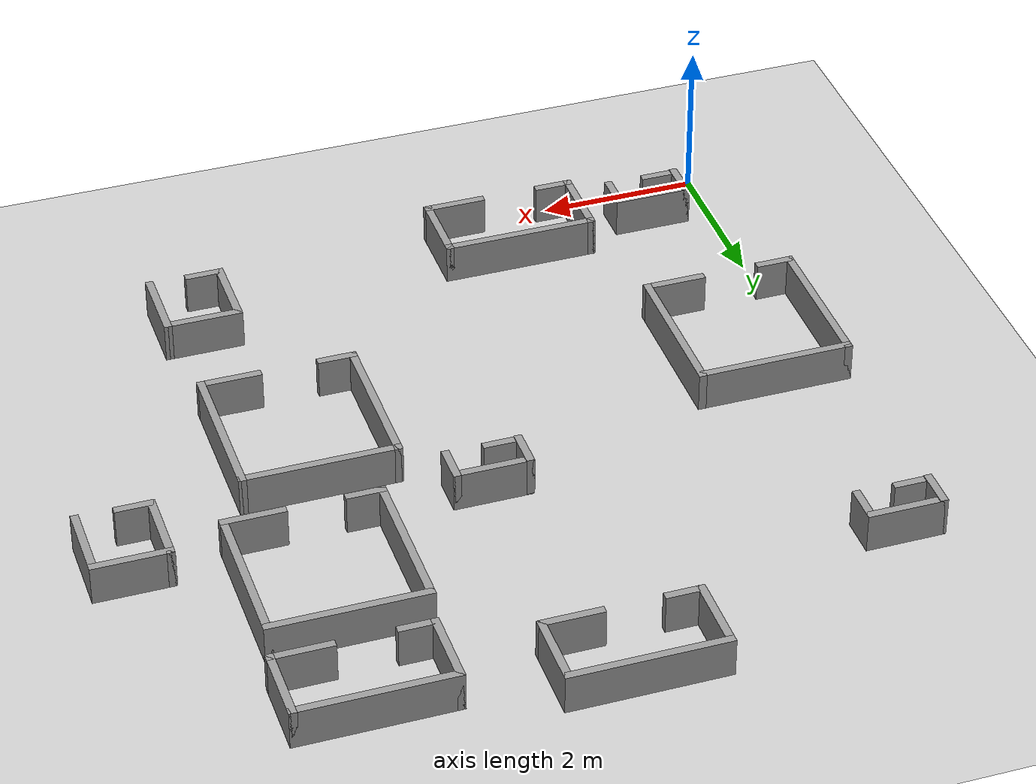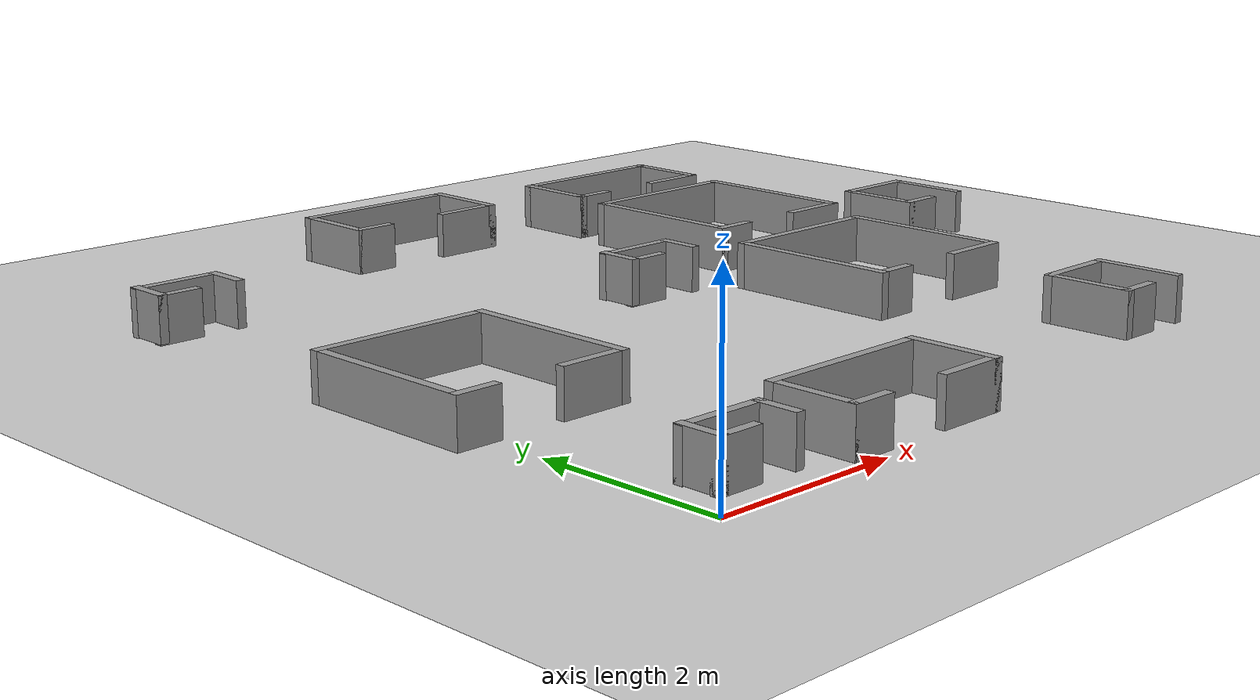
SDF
<sdf version="1.6">
 <world name="default">
  <model name="ground_plane">
   <static>1</static>
   <link name="link">
    <collision name="collision">
     <geometry><plane><normal>0 0 1</normal><size>20 20</size></plane></geometry>
     <surface>
      <contact><collide_bitmask>65535</collide_bitmask></contact>
      <friction><ode><mu>100</mu><mu2>50</mu2></ode></friction>
     </surface>
    </collision>
    <visual name="visual">
     <cast_shadows>0</cast_shadows>
     <geometry><plane><normal>0 0 1</normal><size>20 20</size></plane></geometry>
     <material>
      <script><uri>file://media/materials/scripts/gazebo.material</uri><name>Gazebo/Grey</name></script>
     </material>
    </visual>
   </link>
  </model>
  <model name="shape5">
   <pose>6.8 6.4 0 0 -0 0</pose>
   <link name="Wall_20">
    <collision name="Wall_20_Collision">
     <geometry><box><size>2 0.1 0.5</size></box></geometry>
     <pose>0 0 0.25 0 -0 0</pose>
    </collision>
    <visual name="Wall_20_Visual">
     <pose>0 0 0.25 0 -0 0</pose>
     <geometry><box><size>2 0.1 0.5</size></box></geometry>
     <material>
      <script><uri>file://media/materials/scripts/gazebo.material</uri><name>Gazebo/Grey</name></script>
      <ambient>1 1 1 1</ambient>
     </material>
     <meta><layer>0</layer></meta>
    </visual>
    <pose>-0 0.95 0 0 -0 0</pose>
   </link>
   <link name="Wall_21">
    <collision name="Wall_21_Collision">
     <geometry><box><size>2 0.1 0.5</size></box></geometry>
     <pose>0 0 0.25 0 -0 0</pose>
    </collision>
    <visual name="Wall_21_Visual">
     <pose>0 0 0.25 0 -0 0</pose>
     <geometry><box><size>2 0.1 0.5</size></box></geometry>
     <material>
      <script><uri>file://media/materials/scripts/gazebo.material</uri><name>Gazebo/Grey</name></script>
      <ambient>1 1 1 1</ambient>
     </material>
     <meta><layer>0</layer></meta>
    </visual>
    <pose>0.95 0 0 0 -0 -1.5708</pose>
   </link>
   <link name="Wall_22">
    <collision name="Wall_22_Collision">
     <geometry><box><size>0.8 0.1 0.5</size></box></geometry>
     <pose>0 0 0.25 0 -0 0</pose>
    </collision>
    <visual name="Wall_22_Visual">
     <pose>0 0 0.25 0 -0 0</pose>
     <geometry><box><size>0.8 0.1 0.5</size></box></geometry>
     <material>
      <script><uri>file://media/materials/scripts/gazebo.material</uri><name>Gazebo/Grey</name></script>
      <ambient>1 1 1 1</ambient>
     </material>
     <meta><layer>0</layer></meta>
    </visual>
    <pose>0.6 -0.95 0 0 -0 3.14159</pose>
   </link>
   <link name="Wall_24">
    <collision name="Wall_24_Collision">
     <geometry><box><size>2 0.1 0.5</size></box></geometry>
     <pose>0 0 0.25 0 -0 0</pose>
    </collision>
    <visual name="Wall_24_Visual">
     <pose>0 0 0.25 0 -0 0</pose>
     <geometry><box><size>2 0.1 0.5</size></box></geometry>
     <material>
      <script><uri>file://media/materials/scripts/gazebo.material</uri><name>Gazebo/Grey</name></script>
      <ambient>1 1 1 1</ambient>
     </material>
     <meta><layer>0</layer></meta>
    </visual>
    <pose>-0.95 0 0 0 -0 -1.5708</pose>
   </link>
   <link name="Wall_25">
    <collision name="Wall_25_Collision">
     <geometry><box><size>0.5 0.1 0.5</size></box></geometry>
     <pose>0 0 0.25 0 -0 0</pose>
    </collision>
    <visual name="Wall_25_Visual">
     <pose>0 0 0.25 0 -0 0</pose>
     <geometry><box><size>0.5 0.1 0.5</size></box></geometry>
     <material>
      <script><uri>file://media/materials/scripts/gazebo.material</uri><name>Gazebo/Grey</name></script>
      <ambient>1 1 1 1</ambient>
     </material>
     <meta><layer>0</layer></meta>
    </visual>
    <pose>-0.75 -0.95 0 0 -0 0</pose>
   </link>
   <static>1</static>
  </model>
  <model name="shape5">
   <pose>6.4 3.8 0 0 -0 0</pose>
   <link name="Wall_20">
    <collision name="Wall_20_Collision">
     <geometry><box><size>2 0.1 0.5</size></box></geometry>
     <pose>0 0 0.25 0 -0 0</pose>
    </collision>
    <visual name="Wall_20_Visual">
     <pose>0 0 0.25 0 -0 0</pose>
     <geometry><box><size>2 0.1 0.5</size></box></geometry>
     <material>
      <script><uri>file://media/materials/scripts/gazebo.material</uri><name>Gazebo/Grey</name></script>
      <ambient>1 1 1 1</ambient>
     </material>
     <meta><layer>0</layer></meta>
    </visual>
    <pose>-0 0.95 0 0 -0 0</pose>
   </link>
   <link name="Wall_21">
    <collision name="Wall_21_Collision">
     <geometry><box><size>2 0.1 0.5</size></box></geometry>
     <pose>0 0 0.25 0 -0 0</pose>
    </collision>
    <visual name="Wall_21_Visual">
     <pose>0 0 0.25 0 -0 0</pose>
     <geometry><box><size>2 0.1 0.5</size></box></geometry>
     <material>
      <script><uri>file://media/materials/scripts/gazebo.material</uri><name>Gazebo/Grey</name></script>
      <ambient>1 1 1 1</ambient>
     </material>
     <meta><layer>0</layer></meta>
    </visual>
    <pose>0.95 0 0 0 -0 -1.5708</pose>
   </link>
   <link name="Wall_22">
    <collision name="Wall_22_Collision">
     <geometry><box><size>0.8 0.1 0.5</size></box></geometry>
     <pose>0 0 0.25 0 -0 0</pose>
    </collision>
    <visual name="Wall_22_Visual">
     <pose>0 0 0.25 0 -0 0</pose>
     <geometry><box><size>0.8 0.1 0.5</size></box></geometry>
     <material>
      <script><uri>file://media/materials/scripts/gazebo.material</uri><name>Gazebo/Grey</name></script>
      <ambient>1 1 1 1</ambient>
     </material>
     <meta><layer>0</layer></meta>
    </visual>
    <pose>0.6 -0.95 0 0 -0 3.14159</pose>
   </link>
   <link name="Wall_24">
    <collision name="Wall_24_Collision">
     <geometry><box><size>2 0.1 0.5</size></box></geometry>
     <pose>0 0 0.25 0 -0 0</pose>
    </collision>
    <visual name="Wall_24_Visual">
     <pose>0 0 0.25 0 -0 0</pose>
     <geometry><box><size>2 0.1 0.5</size></box></geometry>
     <material>
      <script><uri>file://media/materials/scripts/gazebo.material</uri><name>Gazebo/Grey</name></script>
      <ambient>1 1 1 1</ambient>
     </material>
     <meta><layer>0</layer></meta>
    </visual>
    <pose>-0.95 0 0 0 -0 -1.5708</pose>
   </link>
   <link name="Wall_25">
    <collision name="Wall_25_Collision">
     <geometry><box><size>0.5 0.1 0.5</size></box></geometry>
     <pose>0 0 0.25 0 -0 0</pose>
    </collision>
    <visual name="Wall_25_Visual">
     <pose>0 0 0.25 0 -0 0</pose>
     <geometry><box><size>0.5 0.1 0.5</size></box></geometry>
     <material>
      <script><uri>file://media/materials/scripts/gazebo.material</uri><name>Gazebo/Grey</name></script>
      <ambient>1 1 1 1</ambient>
     </material>
     <meta><layer>0</layer></meta>
    </visual>
    <pose>-0.75 -0.95 0 0 -0 0</pose>
   </link>
   <static>1</static>
  </model>
  <model name="shape1">
   <pose>2.7 0.6 0 0 -0 0</pose>
   <link name="Wall_0">
    <collision name="Wall_0_Collision">
     <geometry><box><size>2 0.1 0.5</size></box></geometry>
     <pose>0 0 0.25 0 -0 0</pose>
    </collision>
    <visual name="Wall_0_Visual">
     <pose>0 0 0.25 0 -0 0</pose>
     <geometry><box><size>2 0.1 0.5</size></box></geometry>
     <material>
      <script><uri>file://media/materials/scripts/gazebo.material</uri><name>Gazebo/Grey</name></script>
      <ambient>1 1 1 1</ambient>
     </material>
     <meta><layer>0</layer></meta>
    </visual>
    <pose>0 0.45 0 0 -0 0</pose>
   </link>
   <link name="Wall_1">
    <collision name="Wall_1_Collision">
     <geometry><box><size>1 0.1 0.5</size></box></geometry>
     <pose>0 0 0.25 0 -0 0</pose>
    </collision>
    <visual name="Wall_1_Visual">
     <pose>0 0 0.25 0 -0 0</pose>
     <geometry><box><size>1 0.1 0.5</size></box></geometry>
     <material>
      <script><uri>file://media/materials/scripts/gazebo.material</uri><name>Gazebo/Grey</name></script>
      <ambient>1 1 1 1</ambient>
     </material>
     <meta><layer>0</layer></meta>
    </visual>
    <pose>0.95 -0 0 0 -0 -1.5708</pose>
   </link>
   <link name="Wall_2">
    <collision name="Wall_2_Collision">
     <geometry><box><size>0.8 0.1 0.5</size></box></geometry>
     <pose>0 0 0.25 0 -0 0</pose>
    </collision>
    <visual name="Wall_2_Visual">
     <pose>0 0 0.25 0 -0 0</pose>
     <geometry><box><size>0.8 0.1 0.5</size></box></geometry>
     <material>
      <script><uri>file://media/materials/scripts/gazebo.material</uri><name>Gazebo/Grey</name></script>
      <ambient>1 1 1 1</ambient>
     </material>
     <meta><layer>0</layer></meta>
    </visual>
    <pose>0.6 -0.45 0 0 -0 3.14159</pose>
   </link>
   <link name="Wall_4">
    <collision name="Wall_4_Collision">
     <geometry><box><size>1 0.1 0.5</size></box></geometry>
     <pose>0 0 0.25 0 -0 0</pose>
    </collision>
    <visual name="Wall_4_Visual">
     <pose>0 0 0.25 0 -0 0</pose>
     <geometry><box><size>1 0.1 0.5</size></box></geometry>
     <material>
      <script><uri>file://media/materials/scripts/gazebo.material</uri><name>Gazebo/Grey</name></script>
      <ambient>1 1 1 1</ambient>
     </material>
     <meta><layer>0</layer></meta>
    </visual>
    <pose>-0.95 -0 0 0 -0 -1.5708</pose>
   </link>
   <link name="Wall_5">
    <collision name="Wall_5_Collision">
     <geometry><box><size>0.499474 0.1 0.5</size></box></geometry>
     <pose>0 0 0.25 0 -0 0</pose>
    </collision>
    <visual name="Wall_5_Visual">
     <pose>0 0 0.25 0 -0 0</pose>
     <geometry><box><size>0.499474 0.1 0.5</size></box></geometry>
     <material>
      <script><uri>file://media/materials/scripts/gazebo.material</uri><name>Gazebo/Grey</name></script>
      <ambient>1 1 1 1</ambient>
     </material>
     <meta><layer>0</layer></meta>
    </visual>
    <pose>-0.75 -0.45 0 0 -0 0</pose>
   </link>
   <static>1</static>
  </model>
  <model name="shape5">
   <pose>0.6 3.6 0 0 -0 0</pose>
   <link name="Wall_20">
    <collision name="Wall_20_Collision">
     <geometry><box><size>2 0.1 0.5</size></box></geometry>
     <pose>0 0 0.25 0 -0 0</pose>
    </collision>
    <visual name="Wall_20_Visual">
     <pose>0 0 0.25 0 -0 0</pose>
     <geometry><box><size>2 0.1 0.5</size></box></geometry>
     <material>
      <script><uri>file://media/materials/scripts/gazebo.material</uri><name>Gazebo/Grey</name></script>
      <ambient>1 1 1 1</ambient>
     </material>
     <meta><layer>0</layer></meta>
    </visual>
    <pose>-0 0.95 0 0 -0 0</pose>
   </link>
   <link name="Wall_21">
    <collision name="Wall_21_Collision">
     <geometry><box><size>2 0.1 0.5</size></box></geometry>
     <pose>0 0 0.25 0 -0 0</pose>
    </collision>
    <visual name="Wall_21_Visual">
     <pose>0 0 0.25 0 -0 0</pose>
     <geometry><box><size>2 0.1 0.5</size></box></geometry>
     <material>
      <script><uri>file://media/materials/scripts/gazebo.material</uri><name>Gazebo/Grey</name></script>
      <ambient>1 1 1 1</ambient>
     </material>
     <meta><layer>0</layer></meta>
    </visual>
    <pose>0.95 0 0 0 -0 -1.5708</pose>
   </link>
   <link name="Wall_22">
    <collision name="Wall_22_Collision">
     <geometry><box><size>0.8 0.1 0.5</size></box></geometry>
     <pose>0 0 0.25 0 -0 0</pose>
    </collision>
    <visual name="Wall_22_Visual">
     <pose>0 0 0.25 0 -0 0</pose>
     <geometry><box><size>0.8 0.1 0.5</size></box></geometry>
     <material>
      <script><uri>file://media/materials/scripts/gazebo.material</uri><name>Gazebo/Grey</name></script>
      <ambient>1 1 1 1</ambient>
     </material>
     <meta><layer>0</layer></meta>
    </visual>
    <pose>0.6 -0.95 0 0 -0 3.14159</pose>
   </link>
   <link name="Wall_24">
    <collision name="Wall_24_Collision">
     <geometry><box><size>2 0.1 0.5</size></box></geometry>
     <pose>0 0 0.25 0 -0 0</pose>
    </collision>
    <visual name="Wall_24_Visual">
     <pose>0 0 0.25 0 -0 0</pose>
     <geometry><box><size>2 0.1 0.5</size></box></geometry>
     <material>
      <script><uri>file://media/materials/scripts/gazebo.material</uri><name>Gazebo/Grey</name></script>
      <ambient>1 1 1 1</ambient>
     </material>
     <meta><layer>0</layer></meta>
    </visual>
    <pose>-0.95 0 0 0 -0 -1.5708</pose>
   </link>
   <link name="Wall_25">
    <collision name="Wall_25_Collision">
     <geometry><box><size>0.5 0.1 0.5</size></box></geometry>
     <pose>0 0 0.25 0 -0 0</pose>
    </collision>
    <visual name="Wall_25_Visual">
     <pose>0 0 0.25 0 -0 0</pose>
     <geometry><box><size>0.5 0.1 0.5</size></box></geometry>
     <material>
      <script><uri>file://media/materials/scripts/gazebo.material</uri><name>Gazebo/Grey</name></script>
      <ambient>1 1 1 1</ambient>
     </material>
     <meta><layer>0</layer></meta>
    </visual>
    <pose>-0.75 -0.95 0 0 -0 0</pose>
   </link>
   <static>1</static>
  </model>
  <model name="shape1">
   <pose>3.9 8.7 0 0 -0 0</pose>
   <link name="Wall_0">
    <collision name="Wall_0_Collision">
     <geometry><box><size>2 0.1 0.5</size></box></geometry>
     <pose>0 0 0.25 0 -0 0</pose>
    </collision>
    <visual name="Wall_0_Visual">
     <pose>0 0 0.25 0 -0 0</pose>
     <geometry><box><size>2 0.1 0.5</size></box></geometry>
     <material>
      <script><uri>file://media/materials/scripts/gazebo.material</uri><name>Gazebo/Grey</name></script>
      <ambient>1 1 1 1</ambient>
     </material>
     <meta><layer>0</layer></meta>
    </visual>
    <pose>0 0.45 0 0 -0 0</pose>
   </link>
   <link name="Wall_1">
    <collision name="Wall_1_Collision">
     <geometry><box><size>1 0.1 0.5</size></box></geometry>
     <pose>0 0 0.25 0 -0 0</pose>
    </collision>
    <visual name="Wall_1_Visual">
     <pose>0 0 0.25 0 -0 0</pose>
     <geometry><box><size>1 0.1 0.5</size></box></geometry>
     <material>
      <script><uri>file://media/materials/scripts/gazebo.material</uri><name>Gazebo/Grey</name></script>
      <ambient>1 1 1 1</ambient>
     </material>
     <meta><layer>0</layer></meta>
    </visual>
    <pose>0.95 -0 0 0 -0 -1.5708</pose>
   </link>
   <link name="Wall_2">
    <collision name="Wall_2_Collision">
     <geometry><box><size>0.8 0.1 0.5</size></box></geometry>
     <pose>0 0 0.25 0 -0 0</pose>
    </collision>
    <visual name="Wall_2_Visual">
     <pose>0 0 0.25 0 -0 0</pose>
     <geometry><box><size>0.8 0.1 0.5</size></box></geometry>
     <material>
      <script><uri>file://media/materials/scripts/gazebo.material</uri><name>Gazebo/Grey</name></script>
      <ambient>1 1 1 1</ambient>
     </material>
     <meta><layer>0</layer></meta>
    </visual>
    <pose>0.6 -0.45 0 0 -0 3.14159</pose>
   </link>
   <link name="Wall_4">
    <collision name="Wall_4_Collision">
     <geometry><box><size>1 0.1 0.5</size></box></geometry>
     <pose>0 0 0.25 0 -0 0</pose>
    </collision>
    <visual name="Wall_4_Visual">
     <pose>0 0 0.25 0 -0 0</pose>
     <geometry><box><size>1 0.1 0.5</size></box></geometry>
     <material>
      <script><uri>file://media/materials/scripts/gazebo.material</uri><name>Gazebo/Grey</name></script>
      <ambient>1 1 1 1</ambient>
     </material>
     <meta><layer>0</layer></meta>
    </visual>
    <pose>-0.95 -0 0 0 -0 -1.5708</pose>
   </link>
   <link name="Wall_5">
    <collision name="Wall_5_Collision">
     <geometry><box><size>0.499474 0.1 0.5</size></box></geometry>
     <pose>0 0 0.25 0 -0 0</pose>
    </collision>
    <visual name="Wall_5_Visual">
     <pose>0 0 0.25 0 -0 0</pose>
     <geometry><box><size>0.499474 0.1 0.5</size></box></geometry>
     <material>
      <script><uri>file://media/materials/scripts/gazebo.material</uri><name>Gazebo/Grey</name></script>
      <ambient>1 1 1 1</ambient>
     </material>
     <meta><layer>0</layer></meta>
    </visual>
    <pose>-0.75 -0.45 0 0 -0 0</pose>
   </link>
   <static>1</static>
  </model>
  <model name="shape4">
   <pose>7 1.1 0 0 -0 0</pose>
   <link name="Wall_14">
    <collision name="Wall_14_Collision">
     <geometry><box><size>1 0.1 0.5</size></box></geometry>
     <pose>0 0 0.25 0 -0 0</pose>
    </collision>
    <visual name="Wall_14_Visual">
     <pose>0 0 0.25 0 -0 0</pose>
     <geometry><box><size>1 0.1 0.5</size></box></geometry>
     <material>
      <script><uri>file://media/materials/scripts/gazebo.material</uri><name>Gazebo/Grey</name></script>
      <ambient>1 1 1 1</ambient>
     </material>
     <meta><layer>0</layer></meta>
    </visual>
    <pose>-0 0.45 0 0 -0 0</pose>
   </link>
   <link name="Wall_15">
    <collision name="Wall_15_Collision">
     <geometry><box><size>1 0.1 0.5</size></box></geometry>
     <pose>0 0 0.25 0 -0 0</pose>
    </collision>
    <visual name="Wall_15_Visual">
     <pose>0 0 0.25 0 -0 0</pose>
     <geometry><box><size>1 0.1 0.5</size></box></geometry>
     <material>
      <script><uri>file://media/materials/scripts/gazebo.material</uri><name>Gazebo/Grey</name></script>
      <ambient>1 1 1 1</ambient>
     </material>
     <meta><layer>0</layer></meta>
    </visual>
    <pose>0.45 -0 0 0 -0 -1.5708</pose>
   </link>
   <link name="Wall_17">
    <collision name="Wall_17_Collision">
     <geometry><box><size>1 0.1 0.5</size></box></geometry>
     <pose>0 0 0.25 0 -0 0</pose>
    </collision>
    <visual name="Wall_17_Visual">
     <pose>0 0 0.25 0 -0 0</pose>
     <geometry><box><size>1 0.1 0.5</size></box></geometry>
     <material>
      <script><uri>file://media/materials/scripts/gazebo.material</uri><name>Gazebo/Grey</name></script>
      <ambient>1 1 1 1</ambient>
     </material>
     <meta><layer>0</layer></meta>
    </visual>
    <pose>-0.45 -0 0 0 -0 -1.5708</pose>
   </link>
   <link name="Wall_18">
    <collision name="Wall_18_Collision">
     <geometry><box><size>0.5 0.1 0.5</size></box></geometry>
     <pose>0 0 0.25 0 -0 0</pose>
    </collision>
    <visual name="Wall_18_Visual">
     <pose>0 0 0.25 0 -0 0</pose>
     <geometry><box><size>0.5 0.1 0.5</size></box></geometry>
     <material>
      <script><uri>file://media/materials/scripts/gazebo.material</uri><name>Gazebo/Grey</name></script>
      <ambient>1 1 1 1</ambient>
     </material>
     <meta><layer>0</layer></meta>
    </visual>
    <pose>-0.25 -0.45 0 0 -0 0</pose>
   </link>
   <static>1</static>
  </model>
  <model name="shape0">
   <pose>0.2 7.45 0 0 -0 0</pose>
   <link name="Wall_0">
    <pose>0 0.2 0 0 -0 0</pose>
    <inertial>
     <mass>1</mass>
     <inertia><ixx>1</ixx><ixy>0</ixy><ixz>0</ixz><iyy>1</iyy><iyz>0</iyz><izz>1</izz></inertia>
    </inertial>
    <visual name="Wall_0_Visual">
     <pose>0 0 0.25 0 -0 0</pose>
     <geometry><box><size>1 0.1 0.5</size></box></geometry>
     <material>
      <script><uri>file://media/materials/scripts/gazebo.material</uri><name>Gazebo/Grey</name></script>
      <ambient>1 1 1 1</ambient>
      <shader type="vertex"><normal_map>__default__</normal_map></shader>
      <diffuse>0.7 0.7 0.7 1</diffuse>
      <specular>0.01 0.01 0.01 1</specular>
      <emissive>0 0 0 1</emissive>
     </material>
     <meta><layer>0</layer></meta>
    </visual>
    <collision name="Wall_0_Collision">
     <pose>0 0 0.25 0 -0 0</pose>
     <geometry><box><size>1 0.1 0.5</size></box></geometry>
     <surface>
      <friction>
       <ode><mu>1</mu><mu2>1</mu2><fdir1>0 0 0</fdir1><slip1>0</slip1><slip2>0</slip2></ode>
       <torsional>
        <coefficient>1</coefficient>
        <patch_radius>0</patch_radius>
        <surface_radius>0</surface_radius>
        <use_patch_radius>1</use_patch_radius>
        <ode><slip>0</slip></ode>
       </torsional>
      </friction>
      <bounce><restitution_coefficient>0</restitution_coefficient><threshold>1e+06</threshold></bounce>
      <contact>
       <collide_without_contact>0</collide_without_contact>
       <collide_without_contact_bitmask>1</collide_without_contact_bitmask>
       <collide_bitmask>1</collide_bitmask>
       <ode>
        <soft_cfm>0</soft_cfm>
        <soft_erp>0.2</soft_erp>
        <kp>1e+13</kp>
        <kd>1</kd>
        <max_vel>0.01</max_vel>
        <min_depth>0</min_depth>
       </ode>
       <bullet>
        <split_impulse>1</split_impulse>
        <split_impulse_penetration_threshold>-0.01</split_impulse_penetration_threshold>
        <soft_cfm>0</soft_cfm>
        <soft_erp>0.2</soft_erp>
        <kp>1e+13</kp>
        <kd>1</kd>
       </bullet>
      </contact>
     </surface>
    </collision>
   </link>
   <link name="Wall_2">
    <pose>-0.45 0 0.01 0 0 -1.5708</pose>
    <inertial>
     <mass>1</mass>
     <inertia><ixx>1</ixx><ixy>0</ixy><ixz>0</ixz><iyy>1</iyy><iyz>0</iyz><izz>1</izz></inertia>
    </inertial>
    <visual name="Wall_2_Visual">
     <pose>0 0 0.25 0 -0 0</pose>
     <geometry><box><size>0.5 0.1 0.5</size></box></geometry>
     <material>
      <script><uri>file://media/materials/scripts/gazebo.material</uri><name>Gazebo/Grey</name></script>
      <ambient>1 1 1 1</ambient>
      <shader type="vertex"><normal_map>__default__</normal_map></shader>
      <diffuse>0.7 0.7 0.7 1</diffuse>
      <specular>0.01 0.01 0.01 1</specular>
      <emissive>0 0 0 1</emissive>
     </material>
     <meta><layer>0</layer></meta>
    </visual>
    <collision name="Wall_2_Collision">
     <pose>0 0 0.25 0 -0 0</pose>
     <geometry><box><size>0.5 0.1 0.5</size></box></geometry>
     <surface>
      <friction>
       <ode><mu>1</mu><mu2>1</mu2><fdir1>0 0 0</fdir1><slip1>0</slip1><slip2>0</slip2></ode>
       <torsional>
        <coefficient>1</coefficient>
        <patch_radius>0</patch_radius>
        <surface_radius>0</surface_radius>
        <use_patch_radius>1</use_patch_radius>
        <ode><slip>0</slip></ode>
       </torsional>
      </friction>
      <bounce><restitution_coefficient>0</restitution_coefficient><threshold>1e+06</threshold></bounce>
      <contact>
       <collide_without_contact>0</collide_without_contact>
       <collide_without_contact_bitmask>1</collide_without_contact_bitmask>
       <collide_bitmask>1</collide_bitmask>
       <ode>
        <soft_cfm>0</soft_cfm>
        <soft_erp>0.2</soft_erp>
        <kp>1e+13</kp>
        <kd>1</kd>
        <max_vel>0.01</max_vel>
        <min_depth>0</min_depth>
       </ode>
       <bullet>
        <split_impulse>1</split_impulse>
        <split_impulse_penetration_threshold>-0.01</split_impulse_penetration_threshold>
        <soft_cfm>0</soft_cfm>
        <soft_erp>0.2</soft_erp>
        <kp>1e+13</kp>
        <kd>1</kd>
       </bullet>
      </contact>
     </surface>
    </collision>
   </link>
   <link name="Wall_4">
    <pose>0.45 0 0 0 0 -1.5708</pose>
    <inertial>
     <mass>1</mass>
     <inertia><ixx>1</ixx><ixy>0</ixy><ixz>0</ixz><iyy>1</iyy><iyz>0</iyz><izz>1</izz></inertia>
    </inertial>
    <visual name="Wall_4_Visual">
     <pose>0 0 0.25 0 -0 0</pose>
     <geometry><box><size>0.5 0.1 0.5</size></box></geometry>
     <material>
      <script><uri>file://media/materials/scripts/gazebo.material</uri><name>Gazebo/Grey</name></script>
      <ambient>1 1 1 1</ambient>
      <shader type="vertex"><normal_map>__default__</normal_map></shader>
      <diffuse>0.7 0.7 0.7 1</diffuse>
      <specular>0.01 0.01 0.01 1</specular>
      <emissive>0 0 0 1</emissive>
     </material>
     <meta><layer>0</layer></meta>
    </visual>
    <collision name="Wall_4_Collision">
     <pose>0 0 0.25 0 -0 0</pose>
     <geometry><box><size>0.5 0.1 0.5</size></box></geometry>
     <surface>
      <friction>
       <ode><mu>1</mu><mu2>1</mu2><fdir1>0 0 0</fdir1><slip1>0</slip1><slip2>0</slip2></ode>
       <torsional>
        <coefficient>1</coefficient>
        <patch_radius>0</patch_radius>
        <surface_radius>0</surface_radius>
        <use_patch_radius>1</use_patch_radius>
        <ode><slip>0</slip></ode>
       </torsional>
      </friction>
      <bounce><restitution_coefficient>0</restitution_coefficient><threshold>1e+06</threshold></bounce>
      <contact>
       <collide_without_contact>0</collide_without_contact>
       <collide_without_contact_bitmask>1</collide_without_contact_bitmask>
       <collide_bitmask>1</collide_bitmask>
       <ode>
        <soft_cfm>0</soft_cfm>
        <soft_erp>0.2</soft_erp>
        <kp>1e+13</kp>
        <kd>1</kd>
        <max_vel>0.01</max_vel>
        <min_depth>0</min_depth>
       </ode>
       <bullet>
        <split_impulse>1</split_impulse>
        <split_impulse_penetration_threshold>-0.01</split_impulse_penetration_threshold>
        <soft_cfm>0</soft_cfm>
        <soft_erp>0.2</soft_erp>
        <kp>1e+13</kp>
        <kd>1</kd>
       </bullet>
      </contact>
     </surface>
    </collision>
   </link>
   <link name="Wall_7">
    <pose>-0.25 -0.2 0 0 -0 0</pose>
    <inertial>
     <mass>1</mass>
     <inertia><ixx>1</ixx><ixy>0</ixy><ixz>0</ixz><iyy>1</iyy><iyz>0</iyz><izz>1</izz></inertia>
    </inertial>
    <visual name="Wall_7_Visual">
     <pose>0 0 0.25 0 -0 0</pose>
     <geometry><box><size>0.5 0.1 0.5</size></box></geometry>
     <material>
      <script><uri>file://media/materials/scripts/gazebo.material</uri><name>Gazebo/Grey</name></script>
      <ambient>1 1 1 1</ambient>
      <shader type="vertex"><normal_map>__default__</normal_map></shader>
      <diffuse>0.7 0.7 0.7 1</diffuse>
      <specular>0.01 0.01 0.01 1</specular>
      <emissive>0 0 0 1</emissive>
     </material>
     <meta><layer>0</layer></meta>
    </visual>
    <collision name="Wall_7_Collision">
     <pose>0 0 0.25 0 -0 0</pose>
     <geometry><box><size>0.5 0.1 0.5</size></box></geometry>
     <surface>
      <friction>
       <ode><mu>1</mu><mu2>1</mu2><fdir1>0 0 0</fdir1><slip1>0</slip1><slip2>0</slip2></ode>
       <torsional>
        <coefficient>1</coefficient>
        <patch_radius>0</patch_radius>
        <surface_radius>0</surface_radius>
        <use_patch_radius>1</use_patch_radius>
        <ode><slip>0</slip></ode>
       </torsional>
      </friction>
      <bounce><restitution_coefficient>0</restitution_coefficient><threshold>1e+06</threshold></bounce>
      <contact>
       <collide_without_contact>0</collide_without_contact>
       <collide_without_contact_bitmask>1</collide_without_contact_bitmask>
       <collide_bitmask>1</collide_bitmask>
       <ode>
        <soft_cfm>0</soft_cfm>
        <soft_erp>0.2</soft_erp>
        <kp>1e+13</kp>
        <kd>1</kd>
        <max_vel>0.01</max_vel>
        <min_depth>0</min_depth>
       </ode>
       <bullet>
        <split_impulse>1</split_impulse>
        <split_impulse_penetration_threshold>-0.01</split_impulse_penetration_threshold>
        <soft_cfm>0</soft_cfm>
        <soft_erp>0.2</soft_erp>
        <kp>1e+13</kp>
        <kd>1</kd>
       </bullet>
      </contact>
     </surface>
    </collision>
   </link>
   <static>1</static>
  </model>
  <model name="shape0">
   <pose>0.8 0.55 0 0 -0 0</pose>
   <link name="Wall_0">
    <pose>0 0.2 0 0 -0 0</pose>
    <inertial>
     <mass>1</mass>
     <inertia><ixx>1</ixx><ixy>0</ixy><ixz>0</ixz><iyy>1</iyy><iyz>0</iyz><izz>1</izz></inertia>
    </inertial>
    <visual name="Wall_0_Visual">
     <pose>0 0 0.25 0 -0 0</pose>
     <geometry><box><size>1 0.1 0.5</size></box></geometry>
     <material>
      <script><uri>file://media/materials/scripts/gazebo.material</uri><name>Gazebo/Grey</name></script>
      <ambient>1 1 1 1</ambient>
      <shader type="vertex"><normal_map>__default__</normal_map></shader>
      <diffuse>0.7 0.7 0.7 1</diffuse>
      <specular>0.01 0.01 0.01 1</specular>
      <emissive>0 0 0 1</emissive>
     </material>
     <meta><layer>0</layer></meta>
    </visual>
    <collision name="Wall_0_Collision">
     <pose>0 0 0.25 0 -0 0</pose>
     <geometry><box><size>1 0.1 0.5</size></box></geometry>
     <surface>
      <friction>
       <ode><mu>1</mu><mu2>1</mu2><fdir1>0 0 0</fdir1><slip1>0</slip1><slip2>0</slip2></ode>
       <torsional>
        <coefficient>1</coefficient>
        <patch_radius>0</patch_radius>
        <surface_radius>0</surface_radius>
        <use_patch_radius>1</use_patch_radius>
        <ode><slip>0</slip></ode>
       </torsional>
      </friction>
      <bounce><restitution_coefficient>0</restitution_coefficient><threshold>1e+06</threshold></bounce>
      <contact>
       <collide_without_contact>0</collide_without_contact>
       <collide_without_contact_bitmask>1</collide_without_contact_bitmask>
       <collide_bitmask>1</collide_bitmask>
       <ode>
        <soft_cfm>0</soft_cfm>
        <soft_erp>0.2</soft_erp>
        <kp>1e+13</kp>
        <kd>1</kd>
        <max_vel>0.01</max_vel>
        <min_depth>0</min_depth>
       </ode>
       <bullet>
        <split_impulse>1</split_impulse>
        <split_impulse_penetration_threshold>-0.01</split_impulse_penetration_threshold>
        <soft_cfm>0</soft_cfm>
        <soft_erp>0.2</soft_erp>
        <kp>1e+13</kp>
        <kd>1</kd>
       </bullet>
      </contact>
     </surface>
    </collision>
   </link>
   <link name="Wall_2">
    <pose>-0.45 0 0.01 0 0 -1.5708</pose>
    <inertial>
     <mass>1</mass>
     <inertia><ixx>1</ixx><ixy>0</ixy><ixz>0</ixz><iyy>1</iyy><iyz>0</iyz><izz>1</izz></inertia>
    </inertial>
    <visual name="Wall_2_Visual">
     <pose>0 0 0.25 0 -0 0</pose>
     <geometry><box><size>0.5 0.1 0.5</size></box></geometry>
     <material>
      <script><uri>file://media/materials/scripts/gazebo.material</uri><name>Gazebo/Grey</name></script>
      <ambient>1 1 1 1</ambient>
      <shader type="vertex"><normal_map>__default__</normal_map></shader>
      <diffuse>0.7 0.7 0.7 1</diffuse>
      <specular>0.01 0.01 0.01 1</specular>
      <emissive>0 0 0 1</emissive>
     </material>
     <meta><layer>0</layer></meta>
    </visual>
    <collision name="Wall_2_Collision">
     <pose>0 0 0.25 0 -0 0</pose>
     <geometry><box><size>0.5 0.1 0.5</size></box></geometry>
     <surface>
      <friction>
       <ode><mu>1</mu><mu2>1</mu2><fdir1>0 0 0</fdir1><slip1>0</slip1><slip2>0</slip2></ode>
       <torsional>
        <coefficient>1</coefficient>
        <patch_radius>0</patch_radius>
        <surface_radius>0</surface_radius>
        <use_patch_radius>1</use_patch_radius>
        <ode><slip>0</slip></ode>
       </torsional>
      </friction>
      <bounce><restitution_coefficient>0</restitution_coefficient><threshold>1e+06</threshold></bounce>
      <contact>
       <collide_without_contact>0</collide_without_contact>
       <collide_without_contact_bitmask>1</collide_without_contact_bitmask>
       <collide_bitmask>1</collide_bitmask>
       <ode>
        <soft_cfm>0</soft_cfm>
        <soft_erp>0.2</soft_erp>
        <kp>1e+13</kp>
        <kd>1</kd>
        <max_vel>0.01</max_vel>
        <min_depth>0</min_depth>
       </ode>
       <bullet>
        <split_impulse>1</split_impulse>
        <split_impulse_penetration_threshold>-0.01</split_impulse_penetration_threshold>
        <soft_cfm>0</soft_cfm>
        <soft_erp>0.2</soft_erp>
        <kp>1e+13</kp>
        <kd>1</kd>
       </bullet>
      </contact>
     </surface>
    </collision>
   </link>
   <link name="Wall_4">
    <pose>0.45 0 0 0 0 -1.5708</pose>
    <inertial>
     <mass>1</mass>
     <inertia><ixx>1</ixx><ixy>0</ixy><ixz>0</ixz><iyy>1</iyy><iyz>0</iyz><izz>1</izz></inertia>
    </inertial>
    <visual name="Wall_4_Visual">
     <pose>0 0 0.25 0 -0 0</pose>
     <geometry><box><size>0.5 0.1 0.5</size></box></geometry>
     <material>
      <script><uri>file://media/materials/scripts/gazebo.material</uri><name>Gazebo/Grey</name></script>
      <ambient>1 1 1 1</ambient>
      <shader type="vertex"><normal_map>__default__</normal_map></shader>
      <diffuse>0.7 0.7 0.7 1</diffuse>
      <specular>0.01 0.01 0.01 1</specular>
      <emissive>0 0 0 1</emissive>
     </material>
     <meta><layer>0</layer></meta>
    </visual>
    <collision name="Wall_4_Collision">
     <pose>0 0 0.25 0 -0 0</pose>
     <geometry><box><size>0.5 0.1 0.5</size></box></geometry>
     <surface>
      <friction>
       <ode><mu>1</mu><mu2>1</mu2><fdir1>0 0 0</fdir1><slip1>0</slip1><slip2>0</slip2></ode>
       <torsional>
        <coefficient>1</coefficient>
        <patch_radius>0</patch_radius>
        <surface_radius>0</surface_radius>
        <use_patch_radius>1</use_patch_radius>
        <ode><slip>0</slip></ode>
       </torsional>
      </friction>
      <bounce><restitution_coefficient>0</restitution_coefficient><threshold>1e+06</threshold></bounce>
      <contact>
       <collide_without_contact>0</collide_without_contact>
       <collide_without_contact_bitmask>1</collide_without_contact_bitmask>
       <collide_bitmask>1</collide_bitmask>
       <ode>
        <soft_cfm>0</soft_cfm>
        <soft_erp>0.2</soft_erp>
        <kp>1e+13</kp>
        <kd>1</kd>
        <max_vel>0.01</max_vel>
        <min_depth>0</min_depth>
       </ode>
       <bullet>
        <split_impulse>1</split_impulse>
        <split_impulse_penetration_threshold>-0.01</split_impulse_penetration_threshold>
        <soft_cfm>0</soft_cfm>
        <soft_erp>0.2</soft_erp>
        <kp>1e+13</kp>
        <kd>1</kd>
       </bullet>
      </contact>
     </surface>
    </collision>
   </link>
   <link name="Wall_7">
    <pose>-0.25 -0.2 0 0 -0 0</pose>
    <inertial>
     <mass>1</mass>
     <inertia><ixx>1</ixx><ixy>0</ixy><ixz>0</ixz><iyy>1</iyy><iyz>0</iyz><izz>1</izz></inertia>
    </inertial>
    <visual name="Wall_7_Visual">
     <pose>0 0 0.25 0 -0 0</pose>
     <geometry><box><size>0.5 0.1 0.5</size></box></geometry>
     <material>
      <script><uri>file://media/materials/scripts/gazebo.material</uri><name>Gazebo/Grey</name></script>
      <ambient>1 1 1 1</ambient>
      <shader type="vertex"><normal_map>__default__</normal_map></shader>
      <diffuse>0.7 0.7 0.7 1</diffuse>
      <specular>0.01 0.01 0.01 1</specular>
      <emissive>0 0 0 1</emissive>
     </material>
     <meta><layer>0</layer></meta>
    </visual>
    <collision name="Wall_7_Collision">
     <pose>0 0 0.25 0 -0 0</pose>
     <geometry><box><size>0.5 0.1 0.5</size></box></geometry>
     <surface>
      <friction>
       <ode><mu>1</mu><mu2>1</mu2><fdir1>0 0 0</fdir1><slip1>0</slip1><slip2>0</slip2></ode>
       <torsional>
        <coefficient>1</coefficient>
        <patch_radius>0</patch_radius>
        <surface_radius>0</surface_radius>
        <use_patch_radius>1</use_patch_radius>
        <ode><slip>0</slip></ode>
       </torsional>
      </friction>
      <bounce><restitution_coefficient>0</restitution_coefficient><threshold>1e+06</threshold></bounce>
      <contact>
       <collide_without_contact>0</collide_without_contact>
       <collide_without_contact_bitmask>1</collide_without_contact_bitmask>
       <collide_bitmask>1</collide_bitmask>
       <ode>
        <soft_cfm>0</soft_cfm>
        <soft_erp>0.2</soft_erp>
        <kp>1e+13</kp>
        <kd>1</kd>
        <max_vel>0.01</max_vel>
        <min_depth>0</min_depth>
       </ode>
       <bullet>
        <split_impulse>1</split_impulse>
        <split_impulse_penetration_threshold>-0.01</split_impulse_penetration_threshold>
        <soft_cfm>0</soft_cfm>
        <soft_erp>0.2</soft_erp>
        <kp>1e+13</kp>
        <kd>1</kd>
       </bullet>
      </contact>
     </surface>
    </collision>
   </link>
   <static>1</static>
  </model>
  <model name="shape1">
   <pose>6.9 8.3 0 0 -0 0</pose>
   <link name="Wall_0">
    <collision name="Wall_0_Collision">
     <geometry><box><size>2 0.1 0.5</size></box></geometry>
     <pose>0 0 0.25 0 -0 0</pose>
    </collision>
    <visual name="Wall_0_Visual">
     <pose>0 0 0.25 0 -0 0</pose>
     <geometry><box><size>2 0.1 0.5</size></box></geometry>
     <material>
      <script><uri>file://media/materials/scripts/gazebo.material</uri><name>Gazebo/Grey</name></script>
      <ambient>1 1 1 1</ambient>
     </material>
     <meta><layer>0</layer></meta>
    </visual>
    <pose>0 0.45 0 0 -0 0</pose>
   </link>
   <link name="Wall_1">
    <collision name="Wall_1_Collision">
     <geometry><box><size>1 0.1 0.5</size></box></geometry>
     <pose>0 0 0.25 0 -0 0</pose>
    </collision>
    <visual name="Wall_1_Visual">
     <pose>0 0 0.25 0 -0 0</pose>
     <geometry><box><size>1 0.1 0.5</size></box></geometry>
     <material>
      <script><uri>file://media/materials/scripts/gazebo.material</uri><name>Gazebo/Grey</name></script>
      <ambient>1 1 1 1</ambient>
     </material>
     <meta><layer>0</layer></meta>
    </visual>
    <pose>0.95 -0 0 0 -0 -1.5708</pose>
   </link>
   <link name="Wall_2">
    <collision name="Wall_2_Collision">
     <geometry><box><size>0.8 0.1 0.5</size></box></geometry>
     <pose>0 0 0.25 0 -0 0</pose>
    </collision>
    <visual name="Wall_2_Visual">
     <pose>0 0 0.25 0 -0 0</pose>
     <geometry><box><size>0.8 0.1 0.5</size></box></geometry>
     <material>
      <script><uri>file://media/materials/scripts/gazebo.material</uri><name>Gazebo/Grey</name></script>
      <ambient>1 1 1 1</ambient>
     </material>
     <meta><layer>0</layer></meta>
    </visual>
    <pose>0.6 -0.45 0 0 -0 3.14159</pose>
   </link>
   <link name="Wall_4">
    <collision name="Wall_4_Collision">
     <geometry><box><size>1 0.1 0.5</size></box></geometry>
     <pose>0 0 0.25 0 -0 0</pose>
    </collision>
    <visual name="Wall_4_Visual">
     <pose>0 0 0.25 0 -0 0</pose>
     <geometry><box><size>1 0.1 0.5</size></box></geometry>
     <material>
      <script><uri>file://media/materials/scripts/gazebo.material</uri><name>Gazebo/Grey</name></script>
      <ambient>1 1 1 1</ambient>
     </material>
     <meta><layer>0</layer></meta>
    </visual>
    <pose>-0.95 -0 0 0 -0 -1.5708</pose>
   </link>
   <link name="Wall_5">
    <collision name="Wall_5_Collision">
     <geometry><box><size>0.499474 0.1 0.5</size></box></geometry>
     <pose>0 0 0.25 0 -0 0</pose>
    </collision>
    <visual name="Wall_5_Visual">
     <pose>0 0 0.25 0 -0 0</pose>
     <geometry><box><size>0.499474 0.1 0.5</size></box></geometry>
     <material>
      <script><uri>file://media/materials/scripts/gazebo.material</uri><name>Gazebo/Grey</name></script>
      <ambient>1 1 1 1</ambient>
     </material>
     <meta><layer>0</layer></meta>
    </visual>
    <pose>-0.75 -0.45 0 0 -0 0</pose>
   </link>
   <static>1</static>
  </model>
  <model name="shape0">
   <pose>4.5 5.25 0 0 -0 0</pose>
   <link name="Wall_0">
    <pose>0 0.2 0 0 -0 0</pose>
    <inertial>
     <mass>1</mass>
     <inertia><ixx>1</ixx><ixy>0</ixy><ixz>0</ixz><iyy>1</iyy><iyz>0</iyz><izz>1</izz></inertia>
    </inertial>
    <visual name="Wall_0_Visual">
     <pose>0 0 0.25 0 -0 0</pose>
     <geometry><box><size>1 0.1 0.5</size></box></geometry>
     <material>
      <script><uri>file://media/materials/scripts/gazebo.material</uri><name>Gazebo/Grey</name></script>
      <ambient>1 1 1 1</ambient>
      <shader type="vertex"><normal_map>__default__</normal_map></shader>
      <diffuse>0.7 0.7 0.7 1</diffuse>
      <specular>0.01 0.01 0.01 1</specular>
      <emissive>0 0 0 1</emissive>
     </material>
     <meta><layer>0</layer></meta>
    </visual>
    <collision name="Wall_0_Collision">
     <pose>0 0 0.25 0 -0 0</pose>
     <geometry><box><size>1 0.1 0.5</size></box></geometry>
     <surface>
      <friction>
       <ode><mu>1</mu><mu2>1</mu2><fdir1>0 0 0</fdir1><slip1>0</slip1><slip2>0</slip2></ode>
       <torsional>
        <coefficient>1</coefficient>
        <patch_radius>0</patch_radius>
        <surface_radius>0</surface_radius>
        <use_patch_radius>1</use_patch_radius>
        <ode><slip>0</slip></ode>
       </torsional>
      </friction>
      <bounce><restitution_coefficient>0</restitution_coefficient><threshold>1e+06</threshold></bounce>
      <contact>
       <collide_without_contact>0</collide_without_contact>
       <collide_without_contact_bitmask>1</collide_without_contact_bitmask>
       <collide_bitmask>1</collide_bitmask>
       <ode>
        <soft_cfm>0</soft_cfm>
        <soft_erp>0.2</soft_erp>
        <kp>1e+13</kp>
        <kd>1</kd>
        <max_vel>0.01</max_vel>
        <min_depth>0</min_depth>
       </ode>
       <bullet>
        <split_impulse>1</split_impulse>
        <split_impulse_penetration_threshold>-0.01</split_impulse_penetration_threshold>
        <soft_cfm>0</soft_cfm>
        <soft_erp>0.2</soft_erp>
        <kp>1e+13</kp>
        <kd>1</kd>
       </bullet>
      </contact>
     </surface>
    </collision>
   </link>
   <link name="Wall_2">
    <pose>-0.45 0 0.01 0 0 -1.5708</pose>
    <inertial>
     <mass>1</mass>
     <inertia><ixx>1</ixx><ixy>0</ixy><ixz>0</ixz><iyy>1</iyy><iyz>0</iyz><izz>1</izz></inertia>
    </inertial>
    <visual name="Wall_2_Visual">
     <pose>0 0 0.25 0 -0 0</pose>
     <geometry><box><size>0.5 0.1 0.5</size></box></geometry>
     <material>
      <script><uri>file://media/materials/scripts/gazebo.material</uri><name>Gazebo/Grey</name></script>
      <ambient>1 1 1 1</ambient>
      <shader type="vertex"><normal_map>__default__</normal_map></shader>
      <diffuse>0.7 0.7 0.7 1</diffuse>
      <specular>0.01 0.01 0.01 1</specular>
      <emissive>0 0 0 1</emissive>
     </material>
     <meta><layer>0</layer></meta>
    </visual>
    <collision name="Wall_2_Collision">
     <pose>0 0 0.25 0 -0 0</pose>
     <geometry><box><size>0.5 0.1 0.5</size></box></geometry>
     <surface>
      <friction>
       <ode><mu>1</mu><mu2>1</mu2><fdir1>0 0 0</fdir1><slip1>0</slip1><slip2>0</slip2></ode>
       <torsional>
        <coefficient>1</coefficient>
        <patch_radius>0</patch_radius>
        <surface_radius>0</surface_radius>
        <use_patch_radius>1</use_patch_radius>
        <ode><slip>0</slip></ode>
       </torsional>
      </friction>
      <bounce><restitution_coefficient>0</restitution_coefficient><threshold>1e+06</threshold></bounce>
      <contact>
       <collide_without_contact>0</collide_without_contact>
       <collide_without_contact_bitmask>1</collide_without_contact_bitmask>
       <collide_bitmask>1</collide_bitmask>
       <ode>
        <soft_cfm>0</soft_cfm>
        <soft_erp>0.2</soft_erp>
        <kp>1e+13</kp>
        <kd>1</kd>
        <max_vel>0.01</max_vel>
        <min_depth>0</min_depth>
       </ode>
       <bullet>
        <split_impulse>1</split_impulse>
        <split_impulse_penetration_threshold>-0.01</split_impulse_penetration_threshold>
        <soft_cfm>0</soft_cfm>
        <soft_erp>0.2</soft_erp>
        <kp>1e+13</kp>
        <kd>1</kd>
       </bullet>
      </contact>
     </surface>
    </collision>
   </link>
   <link name="Wall_4">
    <pose>0.45 0 0 0 0 -1.5708</pose>
    <inertial>
     <mass>1</mass>
     <inertia><ixx>1</ixx><ixy>0</ixy><ixz>0</ixz><iyy>1</iyy><iyz>0</iyz><izz>1</izz></inertia>
    </inertial>
    <visual name="Wall_4_Visual">
     <pose>0 0 0.25 0 -0 0</pose>
     <geometry><box><size>0.5 0.1 0.5</size></box></geometry>
     <material>
      <script><uri>file://media/materials/scripts/gazebo.material</uri><name>Gazebo/Grey</name></script>
      <ambient>1 1 1 1</ambient>
      <shader type="vertex"><normal_map>__default__</normal_map></shader>
      <diffuse>0.7 0.7 0.7 1</diffuse>
      <specular>0.01 0.01 0.01 1</specular>
      <emissive>0 0 0 1</emissive>
     </material>
     <meta><layer>0</layer></meta>
    </visual>
    <collision name="Wall_4_Collision">
     <pose>0 0 0.25 0 -0 0</pose>
     <geometry><box><size>0.5 0.1 0.5</size></box></geometry>
     <surface>
      <friction>
       <ode><mu>1</mu><mu2>1</mu2><fdir1>0 0 0</fdir1><slip1>0</slip1><slip2>0</slip2></ode>
       <torsional>
        <coefficient>1</coefficient>
        <patch_radius>0</patch_radius>
        <surface_radius>0</surface_radius>
        <use_patch_radius>1</use_patch_radius>
        <ode><slip>0</slip></ode>
       </torsional>
      </friction>
      <bounce><restitution_coefficient>0</restitution_coefficient><threshold>1e+06</threshold></bounce>
      <contact>
       <collide_without_contact>0</collide_without_contact>
       <collide_without_contact_bitmask>1</collide_without_contact_bitmask>
       <collide_bitmask>1</collide_bitmask>
       <ode>
        <soft_cfm>0</soft_cfm>
        <soft_erp>0.2</soft_erp>
        <kp>1e+13</kp>
        <kd>1</kd>
        <max_vel>0.01</max_vel>
        <min_depth>0</min_depth>
       </ode>
       <bullet>
        <split_impulse>1</split_impulse>
        <split_impulse_penetration_threshold>-0.01</split_impulse_penetration_threshold>
        <soft_cfm>0</soft_cfm>
        <soft_erp>0.2</soft_erp>
        <kp>1e+13</kp>
        <kd>1</kd>
       </bullet>
      </contact>
     </surface>
    </collision>
   </link>
   <link name="Wall_7">
    <pose>-0.25 -0.2 0 0 -0 0</pose>
    <inertial>
     <mass>1</mass>
     <inertia><ixx>1</ixx><ixy>0</ixy><ixz>0</ixz><iyy>1</iyy><iyz>0</iyz><izz>1</izz></inertia>
    </inertial>
    <visual name="Wall_7_Visual">
     <pose>0 0 0.25 0 -0 0</pose>
     <geometry><box><size>0.5 0.1 0.5</size></box></geometry>
     <material>
      <script><uri>file://media/materials/scripts/gazebo.material</uri><name>Gazebo/Grey</name></script>
      <ambient>1 1 1 1</ambient>
      <shader type="vertex"><normal_map>__default__</normal_map></shader>
      <diffuse>0.7 0.7 0.7 1</diffuse>
      <specular>0.01 0.01 0.01 1</specular>
      <emissive>0 0 0 1</emissive>
     </material>
     <meta><layer>0</layer></meta>
    </visual>
    <collision name="Wall_7_Collision">
     <pose>0 0 0.25 0 -0 0</pose>
     <geometry><box><size>0.5 0.1 0.5</size></box></geometry>
     <surface>
      <friction>
       <ode><mu>1</mu><mu2>1</mu2><fdir1>0 0 0</fdir1><slip1>0</slip1><slip2>0</slip2></ode>
       <torsional>
        <coefficient>1</coefficient>
        <patch_radius>0</patch_radius>
        <surface_radius>0</surface_radius>
        <use_patch_radius>1</use_patch_radius>
        <ode><slip>0</slip></ode>
       </torsional>
      </friction>
      <bounce><restitution_coefficient>0</restitution_coefficient><threshold>1e+06</threshold></bounce>
      <contact>
       <collide_without_contact>0</collide_without_contact>
       <collide_without_contact_bitmask>1</collide_without_contact_bitmask>
       <collide_bitmask>1</collide_bitmask>
       <ode>
        <soft_cfm>0</soft_cfm>
        <soft_erp>0.2</soft_erp>
        <kp>1e+13</kp>
        <kd>1</kd>
        <max_vel>0.01</max_vel>
        <min_depth>0</min_depth>
       </ode>
       <bullet>
        <split_impulse>1</split_impulse>
        <split_impulse_penetration_threshold>-0.01</split_impulse_penetration_threshold>
        <soft_cfm>0</soft_cfm>
        <soft_erp>0.2</soft_erp>
        <kp>1e+13</kp>
        <kd>1</kd>
       </bullet>
      </contact>
     </surface>
    </collision>
   </link>
   <static>1</static>
  </model>
  <model name="shape4">
   <pose>8.9 5.3 0 0 -0 0</pose>
   <link name="Wall_14">
    <collision name="Wall_14_Collision">
     <geometry><box><size>1 0.1 0.5</size></box></geometry>
     <pose>0 0 0.25 0 -0 0</pose>
    </collision>
    <visual name="Wall_14_Visual">
     <pose>0 0 0.25 0 -0 0</pose>
     <geometry><box><size>1 0.1 0.5</size></box></geometry>
     <material>
      <script><uri>file://media/materials/scripts/gazebo.material</uri><name>Gazebo/Grey</name></script>
      <ambient>1 1 1 1</ambient>
     </material>
     <meta><layer>0</layer></meta>
    </visual>
    <pose>-0 0.45 0 0 -0 0</pose>
   </link>
   <link name="Wall_15">
    <collision name="Wall_15_Collision">
     <geometry><box><size>1 0.1 0.5</size></box></geometry>
     <pose>0 0 0.25 0 -0 0</pose>
    </collision>
    <visual name="Wall_15_Visual">
     <pose>0 0 0.25 0 -0 0</pose>
     <geometry><box><size>1 0.1 0.5</size></box></geometry>
     <material>
      <script><uri>file://media/materials/scripts/gazebo.material</uri><name>Gazebo/Grey</name></script>
      <ambient>1 1 1 1</ambient>
     </material>
     <meta><layer>0</layer></meta>
    </visual>
    <pose>0.45 -0 0 0 -0 -1.5708</pose>
   </link>
   <link name="Wall_17">
    <collision name="Wall_17_Collision">
     <geometry><box><size>1 0.1 0.5</size></box></geometry>
     <pose>0 0 0.25 0 -0 0</pose>
    </collision>
    <visual name="Wall_17_Visual">
     <pose>0 0 0.25 0 -0 0</pose>
     <geometry><box><size>1 0.1 0.5</size></box></geometry>
     <material>
      <script><uri>file://media/materials/scripts/gazebo.material</uri><name>Gazebo/Grey</name></script>
      <ambient>1 1 1 1</ambient>
     </material>
     <meta><layer>0</layer></meta>
    </visual>
    <pose>-0.45 -0 0 0 -0 -1.5708</pose>
   </link>
   <link name="Wall_18">
    <collision name="Wall_18_Collision">
     <geometry><box><size>0.5 0.1 0.5</size></box></geometry>
     <pose>0 0 0.25 0 -0 0</pose>
    </collision>
    <visual name="Wall_18_Visual">
     <pose>0 0 0.25 0 -0 0</pose>
     <geometry><box><size>0.5 0.1 0.5</size></box></geometry>
     <material>
      <script><uri>file://media/materials/scripts/gazebo.material</uri><name>Gazebo/Grey</name></script>
      <ambient>1 1 1 1</ambient>
     </material>
     <meta><layer>0</layer></meta>
    </visual>
    <pose>-0.25 -0.45 0 0 -0 0</pose>
   </link>
   <static>1</static>
  </model>
 </world>
</sdf>
